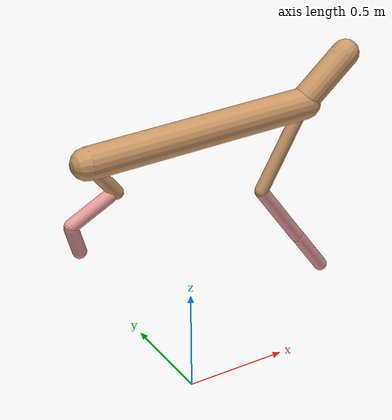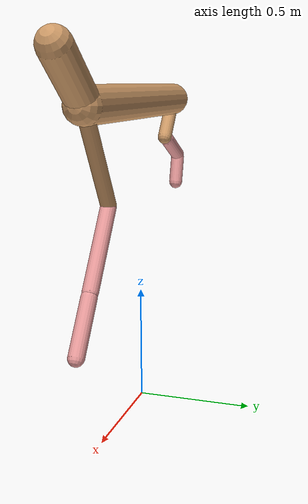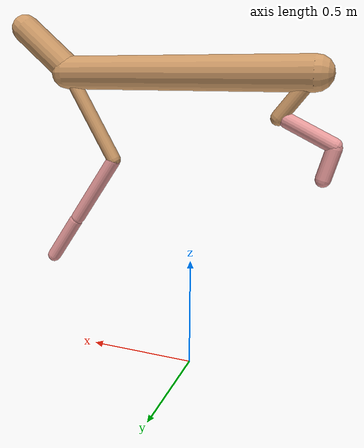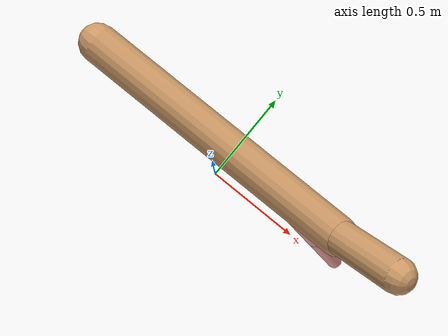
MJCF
<mujoco model="cheetah">
  <compiler angle="radian" coordinate="local" inertiafromgeom="true" settotalmass="14" />
  <default>
    <joint armature=".1" damping=".01" limited="true" solimplimit="0 .8 .03" solreflimit=".02 1" stiffness="8" />
    <geom conaffinity="0" condim="3" contype="1" friction="0.8 .1 .1" rgba="0.8 0.6 .4 1" solimp="0.0 0.8 0.01" solref="0.02 1" />
    <motor ctrllimited="true" ctrlrange="-1 1" />
  </default>
  <size nstack="300000" nuser_geom="1" />
  <option gravity="0 0 -9.81" timestep="0.01" />
  <worldbody>
    <body name="torso" pos="0.0 0.0 1.3327281721920121">
      <joint armature="0" axis="1 0 0" damping="0" limited="false" name="ignorex" pos="0 0 0" stiffness="0" type="slide" />
      <joint armature="0" axis="0 0 1" damping="0" limited="false" name="ignorez" pos="0 0 0" stiffness="0" type="slide" />
      <joint armature="0" axis="0 1 0" damping="0" limited="false" name="ignorey" pos="0 0 0" stiffness="0" type="hinge" />
      <geom fromto="-0.5 0.0 0.0 0.6012077334322518 0.0 0.0" name="torso" size="0.07387647495308931" type="capsule" />
      <geom axisangle="0 1 0 .87" name="head" pos="0.7012077334322518 0.0 0.1" size="0.06415574519817788 0.15" type="capsule" />

      <body name="bthigh" pos="-.5 0 0">
        <joint axis="0 1 0" damping="6" name="bthigh" pos="0 0 0" range="-.52 1.05" stiffness="240" type="hinge" />
        <geom axisangle="0 1 0 -3.8" name="bthigh" pos="0.0734775819030384 0.0 -0.0955208564739499" size="0.0322 0.10149999999999999" type="capsule" />
        <body name="bshin" pos="0.10695516380607678 0.0 -0.18104171294789978">
          <joint axis="0 1 0" damping="4.5" name="bshin" pos="0 0 0" range="-.785 .785" stiffness="180" type="hinge" />
          <geom axisangle="0 1 0 -2.03" name="bshin" pos="-0.0997507764050038 0.0 -0.0498753882025019" rgba="0.9 0.6 0.6 1" size="0.0322 0.105" type="capsule" />
          <body name="bfoot" pos="-0.1995015528100076 0.0 -0.0997507764050038">
            <joint axis="0 1 0" damping="3" name="bfoot" pos="0 0 0" range="-.4 .785" stiffness="120" type="hinge" />
            <geom axisangle="0 1 0 -.27" name="bfoot" pos="0.021667753813597694 0.0 -0.07005907066396588" rgba="0.9 0.6 0.6 1" size="0.0322 0.0658" type="capsule" />
            <inertial mass="10" />
          </body>
        </body>
      </body>
      <body name="fthigh" pos="0.6012077334322519 0.0 0.0">
        <joint axis="0 1 0" damping="4.5" name="fthigh" pos="0 0 0" range="-1.5 0.8" stiffness="180" type="hinge" />
        <geom axisangle="0 1 0 .52" name="fthigh" pos="-0.1143537460973318 0.0 -0.19603499330971164" size="0.0322 0.22102599048277996" type="capsule" />
        <body name="fshin" pos="-0.2287074921946636 0.0 -0.39206998661942327">
          <joint axis="0 1 0" damping="3" name="fshin" pos="0 0 0" range="-1.2 1.1" stiffness="120" type="hinge" />
          <geom axisangle="0 1 0 -.6" name="fshin" pos="0.10607570607194641 0.0 -0.14687405456115657" rgba="0.9 0.6 0.6 1" size="0.0322 0.1761560525652231" type="capsule" />
          <body name="ffoot" pos="0.21215141214389283 0.0 -0.29374810912231314">
            <joint axis="0 1 0" damping="1.5" name="ffoot" pos="0 0 0" range="-3.1 -0.3" stiffness="60" type="hinge" />
            <geom axisangle="0 1 0 -.6" name="ffoot" pos="0.07005301188760688 0.0 -0.10897135182516625" rgba="0.9 0.6 0.6 1" size="0.0322 0.11632946867514735" type="capsule" />
            <inertial mass="10" />
          </body>
        </body>
      </body>
    </body>
  </worldbody>
  <actuator>
    <motor gear="120" joint="bthigh" name="bthigh" />
    <motor gear="90" joint="bshin" name="bshin" />
    <motor gear="60" joint="bfoot" name="bfoot" />
    <motor gear="120" joint="fthigh" name="fthigh" />
    <motor gear="60" joint="fshin" name="fshin" />
    <motor gear="30" joint="ffoot" name="ffoot" />
  </actuator>
</mujoco>
